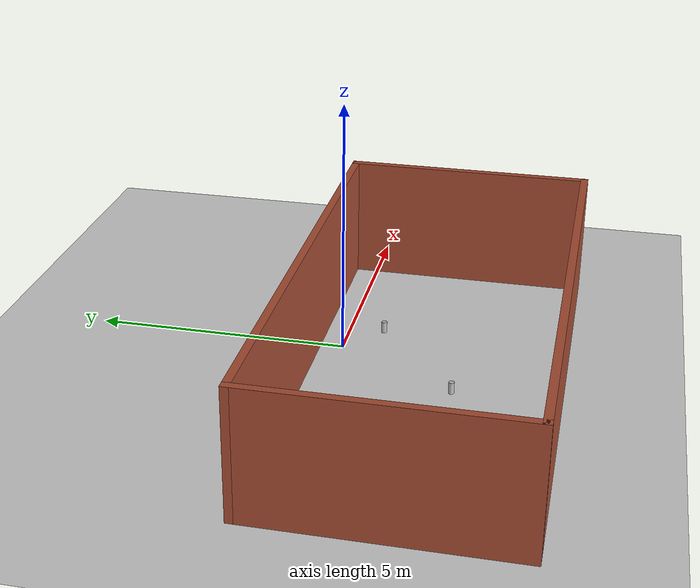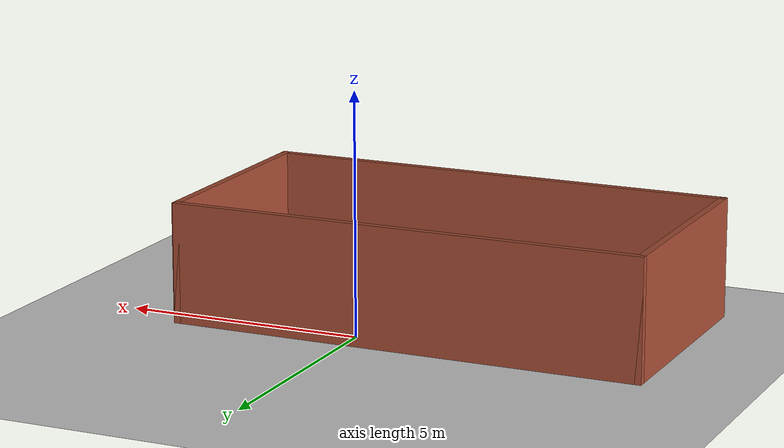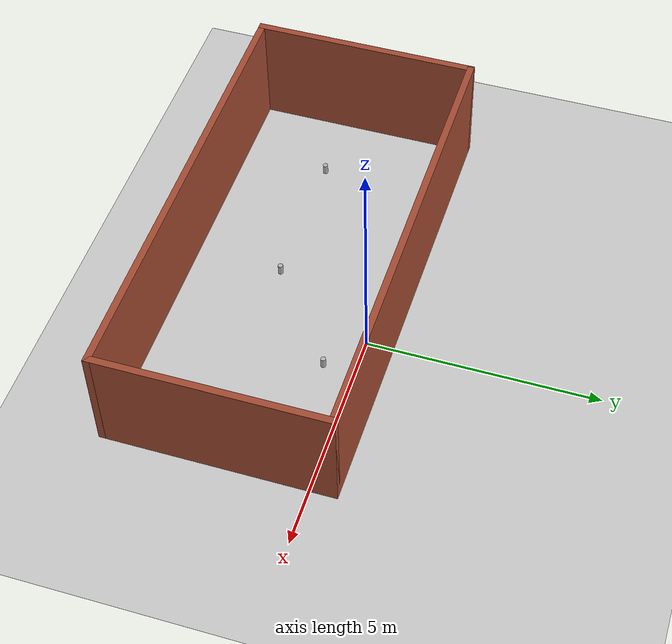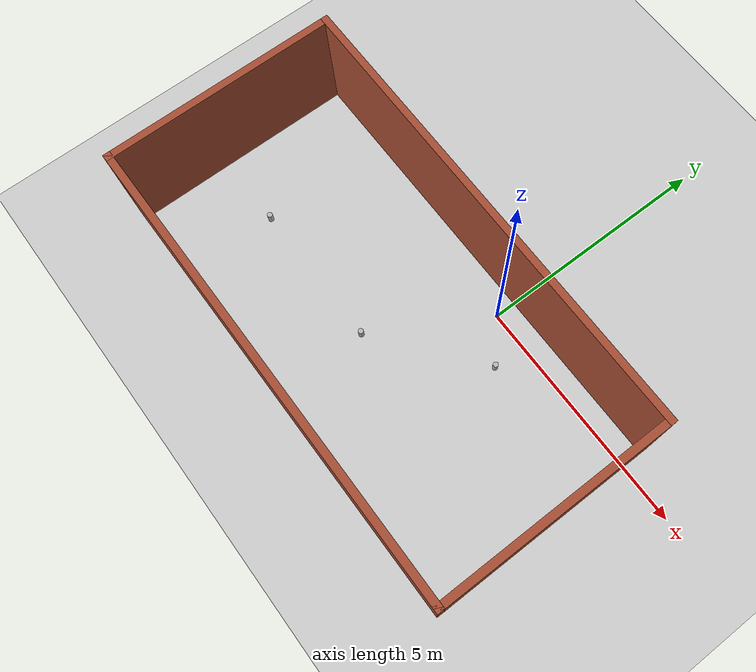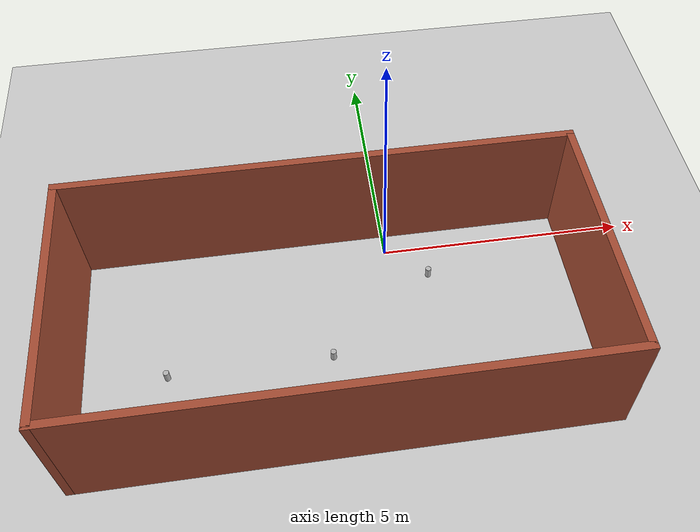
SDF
<sdf version="1.6">
 <world name="default">
  <light name="sun" type="directional">
   <pose>0 0 10 0 -0 0</pose>
   <diffuse>0.8 0.8 0.8 1</diffuse>
   <specular>0.2 0.2 0.2 1</specular>
   <attenuation>
    <range>1000</range>
    <constant>0.9</constant>
    <linear>0.01</linear>
    <quadratic>0.001</quadratic>
   </attenuation>
   <direction>-0.5 0.1 -0.9</direction>
  </light>
  <model name="ground_plane">
   <static>1</static>
   <link name="link">
    <collision name="collision">
     <geometry><plane><normal>0 0 1</normal><size>100 100</size></plane></geometry>
     <surface>
      <contact><collide_bitmask>65535</collide_bitmask></contact>
      <friction><ode><mu>100</mu><mu2>50</mu2></ode></friction>
     </surface>
    </collision>
    <visual name="visual">
     <cast_shadows>0</cast_shadows>
     <geometry><plane><normal>0 0 1</normal><size>100 100</size></plane></geometry>
     <material>
      <script><uri>file://media/materials/scripts/gazebo.material</uri><name>Gazebo/Grey</name></script>
     </material>
    </visual>
   </link>
  </model>
  <gravity>0 0 -9.8</gravity>
  <magnetic_field>6e-06 2.3e-05 -4.2e-05</magnetic_field>
  <atmosphere type="adiabatic"/>
  <physics name="default_physics" default="0" type="ode">
   <max_step_size>0.001</max_step_size>
   <real_time_factor>1</real_time_factor>
   <real_time_update_rate>1000</real_time_update_rate>
  </physics>
  <scene><ambient>0.4 0.4 0.4 1</ambient><background>0.7 0.7 0.7 1</background><shadows>1</shadows></scene>
  <audio><device>default</device></audio>
  <spherical_coordinates>
   <surface_model>EARTH_WGS84</surface_model>
   <latitude_deg>0</latitude_deg>
   <longitude_deg>0</longitude_deg>
   <elevation>0</elevation>
   <heading_deg>0</heading_deg>
  </spherical_coordinates>
  <model name="Walls">
   <pose>-1.215 -1.915 0 0 -0 0</pose>
   <link name="Wall_10">
    <collision name="Wall_10_Collision">
     <geometry><box><size>10 0.15 2.5</size></box></geometry>
     <pose>0 0 1.25 0 -0 0</pose>
    </collision>
    <visual name="Wall_10_Visual">
     <pose>0 0 1.25 0 -0 0</pose>
     <geometry><box><size>10 0.15 2.5</size></box></geometry>
     <material>
      <script><uri>file://media/materials/scripts/gazebo.material</uri><name>Gazebo/Bricks</name></script>
      <ambient>1 1 1 1</ambient>
     </material>
     <meta><layer>0</layer></meta>
    </visual>
    <pose>-0 -2.425 0 0 -0 3.14159</pose>
   </link>
   <link name="Wall_3">
    <collision name="Wall_3_Collision">
     <geometry><box><size>5 0.15 2.5</size></box></geometry>
     <pose>0 0 1.25 0 -0 0</pose>
    </collision>
    <visual name="Wall_3_Visual">
     <pose>0 0 1.25 0 -0 0</pose>
     <geometry><box><size>5 0.15 2.5</size></box></geometry>
     <material>
      <script><uri>file://media/materials/scripts/gazebo.material</uri><name>Gazebo/Bricks</name></script>
      <ambient>1 1 1 1</ambient>
     </material>
     <meta><layer>0</layer></meta>
    </visual>
    <pose>-4.925 -0 0 0 -0 -1.5708</pose>
   </link>
   <link name="Wall_8">
    <collision name="Wall_8_Collision">
     <geometry><box><size>10 0.15 2.5</size></box></geometry>
     <pose>0 0 1.25 0 -0 0</pose>
    </collision>
    <visual name="Wall_8_Visual">
     <pose>0 0 1.25 0 -0 0</pose>
     <geometry><box><size>10 0.15 2.5</size></box></geometry>
     <material>
      <script><uri>file://media/materials/scripts/gazebo.material</uri><name>Gazebo/Bricks</name></script>
      <ambient>1 1 1 1</ambient>
     </material>
     <meta><layer>0</layer></meta>
    </visual>
    <pose>-0 2.425 0 0 -0 0</pose>
   </link>
   <link name="Wall_9">
    <collision name="Wall_9_Collision">
     <geometry><box><size>5 0.15 2.5</size></box></geometry>
     <pose>0 0 1.25 0 -0 0</pose>
    </collision>
    <visual name="Wall_9_Visual">
     <pose>0 0 1.25 0 -0 0</pose>
     <geometry><box><size>5 0.15 2.5</size></box></geometry>
     <material>
      <script><uri>file://media/materials/scripts/gazebo.material</uri><name>Gazebo/Bricks</name></script>
      <ambient>1 1 1 1</ambient>
     </material>
     <meta><layer>0</layer></meta>
    </visual>
    <pose>4.925 -0 0 0 -0 -1.5708</pose>
   </link>
   <static>1</static>
  </model>
  <model name="beer">
   <link name="link">
    <pose>0 0 0.115 0 -0 0</pose>
    <inertial>
     <mass>0.39</mass>
     <inertia><ixx>0.00058</ixx><ixy>0</ixy><ixz>0</ixz><iyy>0.00058</iyy><iyz>0</iyz><izz>0.00019</izz></inertia>
    </inertial>
    <collision name="collision">
     <geometry><cylinder><radius>0.055</radius><length>0.23</length></cylinder></geometry>
    </collision>
    <visual name="visual">
     <geometry><cylinder><radius>0.055</radius><length>0.23</length></cylinder></geometry>
     <material>
      <script>
       <uri>model://beer/materials/scripts</uri>
       <uri>model://beer/materials/textures</uri>
       <name>Beer/Diffuse</name>
      </script>
     </material>
    </visual>
   </link>
   <pose>0.794029 -0.690351 0 0 -0 0</pose>
  </model>
  <model name="beer_0">
   <link name="link">
    <pose>0 0 0.115 0 -0 0</pose>
    <inertial>
     <mass>0.39</mass>
     <inertia><ixx>0.00058</ixx><ixy>0</ixy><ixz>0</ixz><iyy>0.00058</iyy><iyz>0</iyz><izz>0.00019</izz></inertia>
    </inertial>
    <collision name="collision">
     <geometry><cylinder><radius>0.055</radius><length>0.23</length></cylinder></geometry>
    </collision>
    <visual name="visual">
     <geometry><cylinder><radius>0.055</radius><length>0.23</length></cylinder></geometry>
     <material>
      <script>
       <uri>model://beer/materials/scripts</uri>
       <uri>model://beer/materials/textures</uri>
       <name>Beer/Diffuse</name>
      </script>
     </material>
    </visual>
   </link>
   <pose>-4.48433 -2.36594 0 0 -0 0</pose>
  </model>
  <model name="beer_1">
   <link name="link">
    <pose>0 0 0.115 0 -0 0</pose>
    <inertial>
     <mass>0.39</mass>
     <inertia><ixx>0.00058</ixx><ixy>0</ixy><ixz>0</ixz><iyy>0.00058</iyy><iyz>0</iyz><izz>0.00019</izz></inertia>
    </inertial>
    <collision name="collision">
     <geometry><cylinder><radius>0.055</radius><length>0.23</length></cylinder></geometry>
    </collision>
    <visual name="visual">
     <geometry><cylinder><radius>0.055</radius><length>0.23</length></cylinder></geometry>
     <material>
      <script>
       <uri>model://beer/materials/scripts</uri>
       <uri>model://beer/materials/textures</uri>
       <name>Beer/Diffuse</name>
      </script>
     </material>
    </visual>
   </link>
   <pose>-1.33816 -2.35673 0 0 -0 0</pose>
  </model>
 </world>
</sdf>
